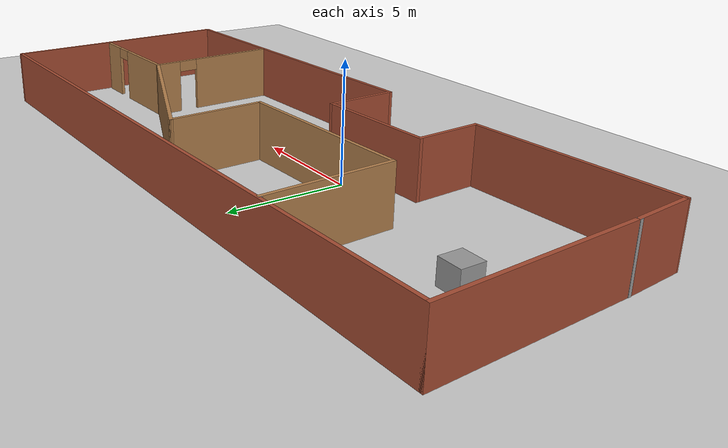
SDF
<sdf version="1.7">
 <world name="default">
  <light name="sun" type="directional">
   <pose>0 0 10 0 -0 0</pose>
   <diffuse>0.8 0.8 0.8 1</diffuse>
   <specular>0.2 0.2 0.2 1</specular>
   <attenuation>
    <range>1000</range>
    <constant>0.9</constant>
    <linear>0.01</linear>
    <quadratic>0.001</quadratic>
   </attenuation>
   <direction>-0.5 0.1 -0.9</direction>
   <spot><inner_angle>0</inner_angle><outer_angle>0</outer_angle><falloff>0</falloff></spot>
  </light>
  <model name="ground_plane">
   <static>1</static>
   <link name="link">
    <collision name="collision">
     <geometry><plane><normal>0 0 1</normal><size>100 100</size></plane></geometry>
     <surface>
      <contact><collide_bitmask>65535</collide_bitmask></contact>
      <friction><ode><mu>100</mu><mu2>50</mu2></ode></friction>
     </surface>
    </collision>
    <visual name="visual">
     <cast_shadows>0</cast_shadows>
     <geometry><plane><normal>0 0 1</normal><size>100 100</size></plane></geometry>
     <material>
      <script><uri>file://media/materials/scripts/gazebo.material</uri><name>Gazebo/Grey</name></script>
     </material>
    </visual>
   </link>
  </model>
  <gravity>0 0 -9.8</gravity>
  <magnetic_field>6e-06 2.3e-05 -4.2e-05</magnetic_field>
  <atmosphere type="adiabatic"/>
  <physics type="ode">
   <max_step_size>0.001</max_step_size>
   <real_time_factor>1</real_time_factor>
   <real_time_update_rate>1000</real_time_update_rate>
  </physics>
  <scene><ambient>0.4 0.4 0.4 1</ambient><background>0.7 0.7 0.7 1</background><shadows>1</shadows></scene>
  <spherical_coordinates>
   <surface_model>EARTH_WGS84</surface_model>
   <latitude_deg>0</latitude_deg>
   <longitude_deg>0</longitude_deg>
   <elevation>0</elevation>
   <heading_deg>0</heading_deg>
  </spherical_coordinates>
  <model name="house">
   <pose>3.3264 1.16786 0 0 -0 0.047322</pose>
   <link name="Wall_0">
    <collision name="Wall_0_Collision">
     <geometry><box><size>0.16 0.15 2.5</size></box></geometry>
     <pose>0 0 1.25 0 -0 0</pose>
    </collision>
    <visual name="Wall_0_Visual">
     <pose>0 0 1.25 0 -0 0</pose>
     <geometry><box><size>0.16 0.15 2.5</size></box></geometry>
     <material>
      <script><uri>file://media/materials/scripts/gazebo.material</uri><name>Gazebo/Grey</name></script>
      <ambient>1 1 1 1</ambient>
     </material>
     <meta><layer>0</layer></meta>
    </visual>
    <pose>-14.555 -2.675 0 0 -0 0</pose>
   </link>
   <link name="Wall_1">
    <collision name="Wall_1_Collision">
     <geometry><box><size>8.25 0.15 2.5</size></box></geometry>
     <pose>0 0 1.25 0 -0 0</pose>
    </collision>
    <visual name="Wall_1_Visual">
     <pose>0 0 1.25 0 -0 0</pose>
     <geometry><box><size>8.25 0.15 2.5</size></box></geometry>
     <material>
      <script><uri>file://media/materials/scripts/gazebo.material</uri><name>Gazebo/Bricks</name></script>
      <ambient>1 1 1 1</ambient>
     </material>
     <meta><layer>0</layer></meta>
    </visual>
    <pose>-14.55 1.375 0 0 -0 1.5708</pose>
   </link>
   <link name="Wall_10">
    <collision name="Wall_10_Collision">
     <geometry><box><size>8.5 0.15 2.5</size></box></geometry>
     <pose>0 0 1.25 0 -0 0</pose>
    </collision>
    <visual name="Wall_10_Visual">
     <pose>0 0 1.25 0 -0 0</pose>
     <geometry><box><size>8.5 0.15 2.5</size></box></geometry>
     <material>
      <script><uri>file://media/materials/scripts/gazebo.material</uri><name>Gazebo/Bricks</name></script>
      <ambient>1 1 1 1</ambient>
     </material>
     <meta><layer>0</layer></meta>
    </visual>
    <pose>-10.305 -5.175 0 0 -0 3.14159</pose>
   </link>
   <link name="Wall_11">
    <collision name="Wall_11_Collision">
     <geometry><box><size>2.65098 0.15 2.5</size></box></geometry>
     <pose>0 0 1.25 0 -0 0</pose>
    </collision>
    <visual name="Wall_11_Visual">
     <pose>0 0 1.25 0 -0 0</pose>
     <geometry><box><size>2.65098 0.15 2.5</size></box></geometry>
     <material>
      <script><uri>file://media/materials/scripts/gazebo.material</uri><name>Gazebo/Bricks</name></script>
      <ambient>1 1 1 1</ambient>
     </material>
     <meta><layer>0</layer></meta>
    </visual>
    <pose>-14.515 -3.925 0 0 -0 1.59879</pose>
   </link>
   <link name="Wall_15">
    <pose>8.67897 -2.36258 0 0 -0 1.5708</pose>
    <visual name="Wall_15_Visual_0">
     <pose>-1.0616 0 1.25 0 -0 0</pose>
     <geometry><box><size>4.12679 0.15 2.5</size></box></geometry>
     <material>
      <script><uri>file://media/materials/scripts/gazebo.material</uri><name>Gazebo/Wood</name></script>
      <ambient>1 1 1 1</ambient>
     </material>
     <meta><layer>0</layer></meta>
    </visual>
    <collision name="Wall_15_Collision_0">
     <geometry><box><size>4.12679 0.15 2.5</size></box></geometry>
     <pose>-1.0616 0 1.25 0 -0 0</pose>
    </collision>
    <visual name="Wall_15_Visual_1">
     <pose>2.5134 0 1.25 0 -0 0</pose>
     <geometry><box><size>1.22321 0.15 2.5</size></box></geometry>
     <material>
      <script><uri>file://media/materials/scripts/gazebo.material</uri><name>Gazebo/Wood</name></script>
      <ambient>1 1 1 1</ambient>
     </material>
     <meta><layer>0</layer></meta>
    </visual>
    <collision name="Wall_15_Collision_1">
     <geometry><box><size>1.22321 0.15 2.5</size></box></geometry>
     <pose>2.5134 0 1.25 0 -0 0</pose>
    </collision>
    <visual name="Wall_15_Visual_2">
     <pose>1.45179 0 2.25 0 -0 0</pose>
     <geometry><box><size>0.9 0.15 0.5</size></box></geometry>
     <material>
      <script><uri>file://media/materials/scripts/gazebo.material</uri><name>Gazebo/Wood</name></script>
      <ambient>1 1 1 1</ambient>
     </material>
     <meta><layer>0</layer></meta>
    </visual>
    <collision name="Wall_15_Collision_2">
     <geometry><box><size>0.9 0.15 0.5</size></box></geometry>
     <pose>1.45179 0 2.25 0 -0 0</pose>
    </collision>
   </link>
   <link name="Wall_16">
    <pose>11.479 0.687425 0 0 -0 0</pose>
    <visual name="Wall_16_Visual_0">
     <pose>-1.1462 0 1.25 0 -0 0</pose>
     <geometry><box><size>3.45761 0.15 2.5</size></box></geometry>
     <material>
      <script><uri>file://media/materials/scripts/gazebo.material</uri><name>Gazebo/Wood</name></script>
      <ambient>1 1 1 1</ambient>
     </material>
     <meta><layer>0</layer></meta>
    </visual>
    <collision name="Wall_16_Collision_0">
     <geometry><box><size>3.45761 0.15 2.5</size></box></geometry>
     <pose>-1.1462 0 1.25 0 -0 0</pose>
    </collision>
    <visual name="Wall_16_Visual_1">
     <pose>2.1788 0 1.25 0 -0 0</pose>
     <geometry><box><size>1.3924 0.15 2.5</size></box></geometry>
     <material>
      <script><uri>file://media/materials/scripts/gazebo.material</uri><name>Gazebo/Wood</name></script>
      <ambient>1 1 1 1</ambient>
     </material>
     <meta><layer>0</layer></meta>
    </visual>
    <collision name="Wall_16_Collision_1">
     <geometry><box><size>1.3924 0.15 2.5</size></box></geometry>
     <pose>2.1788 0 1.25 0 -0 0</pose>
    </collision>
    <visual name="Wall_16_Visual_2">
     <pose>1.0326 0 2.25 0 -0 0</pose>
     <geometry><box><size>0.9 0.15 0.5</size></box></geometry>
     <material>
      <script><uri>file://media/materials/scripts/gazebo.material</uri><name>Gazebo/Wood</name></script>
      <ambient>1 1 1 1</ambient>
     </material>
     <meta><layer>0</layer></meta>
    </visual>
    <collision name="Wall_16_Collision_2">
     <geometry><box><size>0.9 0.15 0.5</size></box></geometry>
     <pose>1.0326 0 2.25 0 -0 0</pose>
    </collision>
   </link>
   <link name="Wall_18">
    <collision name="Wall_18_Collision">
     <geometry><box><size>0.16 0.15 2.5</size></box></geometry>
     <pose>0 0 1.25 0 -0 0</pose>
    </collision>
    <visual name="Wall_18_Visual">
     <pose>0 0 1.25 0 -0 0</pose>
     <geometry><box><size>0.16 0.15 2.5</size></box></geometry>
     <material>
      <script><uri>file://media/materials/scripts/gazebo.material</uri><name>Gazebo/Grey</name></script>
      <ambient>1 1 1 1</ambient>
     </material>
     <meta><layer>0</layer></meta>
    </visual>
    <pose>-7.31564 5.35522 0 0 -0 0</pose>
   </link>
   <link name="Wall_19">
    <collision name="Wall_19_Collision">
     <geometry><box><size>5.5 0.15 2.5</size></box></geometry>
     <pose>0 0 1.25 0 -0 0</pose>
    </collision>
    <visual name="Wall_19_Visual">
     <pose>0 0 1.25 0 -0 0</pose>
     <geometry><box><size>5.5 0.15 2.5</size></box></geometry>
     <material>
      <script><uri>file://media/materials/scripts/gazebo.material</uri><name>Gazebo/Wood</name></script>
      <ambient>1 1 1 1</ambient>
     </material>
     <meta><layer>0</layer></meta>
    </visual>
    <pose>-7.31064 2.68022 0 0 -0 -1.5708</pose>
   </link>
   <link name="Wall_2">
    <collision name="Wall_2_Collision">
     <geometry><box><size>29.25 0.15 2.5</size></box></geometry>
     <pose>0 0 1.25 0 -0 0</pose>
    </collision>
    <visual name="Wall_2_Visual">
     <pose>0 0 1.25 0 -0 0</pose>
     <geometry><box><size>29.25 0.15 2.5</size></box></geometry>
     <material>
      <script><uri>file://media/materials/scripts/gazebo.material</uri><name>Gazebo/Bricks</name></script>
      <ambient>1 1 1 1</ambient>
     </material>
     <meta><layer>0</layer></meta>
    </visual>
    <pose>-0 5.425 0 0 -0 0</pose>
   </link>
   <link name="Wall_20">
    <collision name="Wall_20_Collision">
     <geometry><box><size>8.25 0.15 2.5</size></box></geometry>
     <pose>0 0 1.25 0 -0 0</pose>
    </collision>
    <visual name="Wall_20_Visual">
     <pose>0 0 1.25 0 -0 0</pose>
     <geometry><box><size>8.25 0.15 2.5</size></box></geometry>
     <material>
      <script><uri>file://media/materials/scripts/gazebo.material</uri><name>Gazebo/Wood</name></script>
      <ambient>1 1 1 1</ambient>
     </material>
     <meta><layer>0</layer></meta>
    </visual>
    <pose>-3.26064 0.00522 0 0 -0 0</pose>
   </link>
   <link name="Wall_21">
    <collision name="Wall_21_Collision">
     <geometry><box><size>4.25 0.15 2.5</size></box></geometry>
     <pose>0 0 1.25 0 -0 0</pose>
    </collision>
    <visual name="Wall_21_Visual">
     <pose>0 0 1.25 0 -0 0</pose>
     <geometry><box><size>4.25 0.15 2.5</size></box></geometry>
     <material>
      <script><uri>file://media/materials/scripts/gazebo.material</uri><name>Gazebo/Wood</name></script>
      <ambient>1 1 1 1</ambient>
     </material>
     <meta><layer>0</layer></meta>
    </visual>
    <pose>0.789365 2.05522 0 0 -0 1.5708</pose>
   </link>
   <link name="Wall_22">
    <collision name="Wall_22_Collision">
     <geometry><box><size>8.74809 0.15 2.5</size></box></geometry>
     <pose>0 0 1.25 0 -0 0</pose>
    </collision>
    <visual name="Wall_22_Visual">
     <pose>0 0 1.25 0 -0 0</pose>
     <geometry><box><size>8.74809 0.15 2.5</size></box></geometry>
     <material>
      <script><uri>file://media/materials/scripts/gazebo.material</uri><name>Gazebo/Wood</name></script>
      <ambient>1 1 1 1</ambient>
     </material>
     <meta><layer>0</layer></meta>
    </visual>
    <pose>4.73417 2.39632 0 0 -0 -0.408798</pose>
   </link>
   <link name="Wall_3">
    <collision name="Wall_3_Collision">
     <geometry><box><size>11 0.15 2.5</size></box></geometry>
     <pose>0 0 1.25 0 -0 0</pose>
    </collision>
    <visual name="Wall_3_Visual">
     <pose>0 0 1.25 0 -0 0</pose>
     <geometry><box><size>11 0.15 2.5</size></box></geometry>
     <material>
      <script><uri>file://media/materials/scripts/gazebo.material</uri><name>Gazebo/Bricks</name></script>
      <ambient>1 1 1 1</ambient>
     </material>
     <meta><layer>0</layer></meta>
    </visual>
    <pose>14.55 0 0 0 -0 -1.5708</pose>
   </link>
   <link name="Wall_4">
    <collision name="Wall_4_Collision">
     <geometry><box><size>0.16 0.15 2.5</size></box></geometry>
     <pose>0 0 1.25 0 -0 0</pose>
    </collision>
    <visual name="Wall_4_Visual">
     <pose>0 0 1.25 0 -0 0</pose>
     <geometry><box><size>0.16 0.15 2.5</size></box></geometry>
     <material>
      <script><uri>file://media/materials/scripts/gazebo.material</uri><name>Gazebo/Grey</name></script>
      <ambient>1 1 1 1</ambient>
     </material>
     <meta><layer>0</layer></meta>
    </visual>
    <pose>14.555 -5.425 0 0 -0 0</pose>
   </link>
   <link name="Wall_5">
    <collision name="Wall_5_Collision">
     <geometry><box><size>15.75 0.15 2.5</size></box></geometry>
     <pose>0 0 1.25 0 -0 0</pose>
    </collision>
    <visual name="Wall_5_Visual">
     <pose>0 0 1.25 0 -0 0</pose>
     <geometry><box><size>15.75 0.15 2.5</size></box></geometry>
     <material>
      <script><uri>file://media/materials/scripts/gazebo.material</uri><name>Gazebo/Bricks</name></script>
      <ambient>1 1 1 1</ambient>
     </material>
     <meta><layer>0</layer></meta>
    </visual>
    <pose>6.76 -5.425 0 0 -0 3.14159</pose>
   </link>
   <link name="Wall_6">
    <collision name="Wall_6_Collision">
     <geometry><box><size>3.25 0.15 2.5</size></box></geometry>
     <pose>0 0 1.25 0 -0 0</pose>
    </collision>
    <visual name="Wall_6_Visual">
     <pose>0 0 1.25 0 -0 0</pose>
     <geometry><box><size>3.25 0.15 2.5</size></box></geometry>
     <material>
      <script><uri>file://media/materials/scripts/gazebo.material</uri><name>Gazebo/Bricks</name></script>
      <ambient>1 1 1 1</ambient>
     </material>
     <meta><layer>0</layer></meta>
    </visual>
    <pose>-1.04 -3.875 0 0 -0 1.5708</pose>
   </link>
   <link name="Wall_7">
    <collision name="Wall_7_Collision">
     <geometry><box><size>5.25 0.15 2.5</size></box></geometry>
     <pose>0 0 1.25 0 -0 0</pose>
    </collision>
    <visual name="Wall_7_Visual">
     <pose>0 0 1.25 0 -0 0</pose>
     <geometry><box><size>5.25 0.15 2.5</size></box></geometry>
     <material>
      <script><uri>file://media/materials/scripts/gazebo.material</uri><name>Gazebo/Bricks</name></script>
      <ambient>1 1 1 1</ambient>
     </material>
     <meta><layer>0</layer></meta>
    </visual>
    <pose>-3.59 -2.325 0 0 -0 3.14159</pose>
   </link>
   <link name="Wall_8">
    <collision name="Wall_8_Collision">
     <geometry><box><size>3 0.15 2.5</size></box></geometry>
     <pose>0 0 1.25 0 -0 0</pose>
    </collision>
    <visual name="Wall_8_Visual">
     <pose>0 0 1.25 0 -0 0</pose>
     <geometry><box><size>3 0.15 2.5</size></box></geometry>
     <material>
      <script><uri>file://media/materials/scripts/gazebo.material</uri><name>Gazebo/Bricks</name></script>
      <ambient>1 1 1 1</ambient>
     </material>
     <meta><layer>0</layer></meta>
    </visual>
    <pose>-6.14 -3.75 0 0 -0 -1.5708</pose>
   </link>
   <link name="Wall_9">
    <collision name="Wall_9_Collision">
     <geometry><box><size>0.16 0.15 2.5</size></box></geometry>
     <pose>0 0 1.25 0 -0 0</pose>
    </collision>
    <visual name="Wall_9_Visual">
     <pose>0 0 1.25 0 -0 0</pose>
     <geometry><box><size>0.16 0.15 2.5</size></box></geometry>
     <material>
      <script><uri>file://media/materials/scripts/gazebo.material</uri><name>Gazebo/Grey</name></script>
      <ambient>1 1 1 1</ambient>
     </material>
     <meta><layer>0</layer></meta>
    </visual>
    <pose>-6.135 -5.175 0 0 -0 0</pose>
   </link>
   <static>1</static>
  </model>
  <model name="unit_box">
   <pose>-8.24441 1.67275 0.5 0 -0 0</pose>
   <link name="link">
    <inertial>
     <mass>1</mass>
     <inertia>
      <ixx>0.166667</ixx>
      <ixy>0</ixy>
      <ixz>0</ixz>
      <iyy>0.166667</iyy>
      <iyz>0</iyz>
      <izz>0.166667</izz>
     </inertia>
    </inertial>
    <collision name="collision"><geometry><box><size>1 1 1</size></box></geometry></collision>
    <visual name="visual">
     <geometry><box><size>1 1 1</size></box></geometry>
     <material>
      <script><name>Gazebo/Grey</name><uri>file://media/materials/scripts/gazebo.material</uri></script>
     </material>
    </visual>
   </link>
  </model>
 </world>
</sdf>
